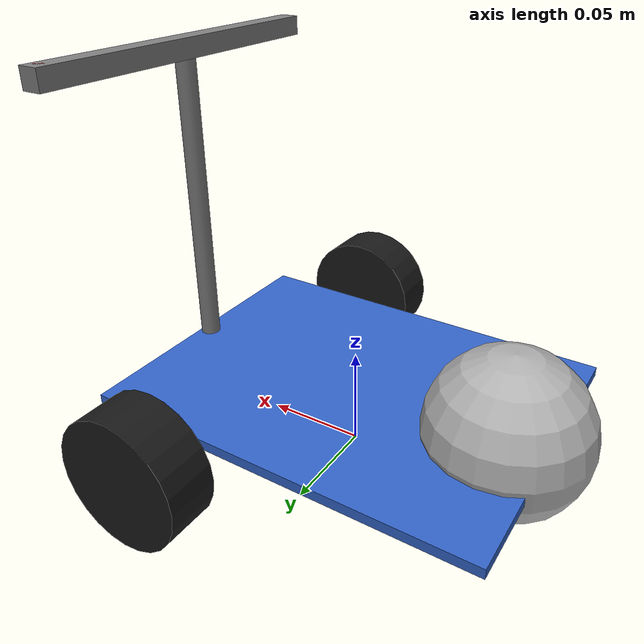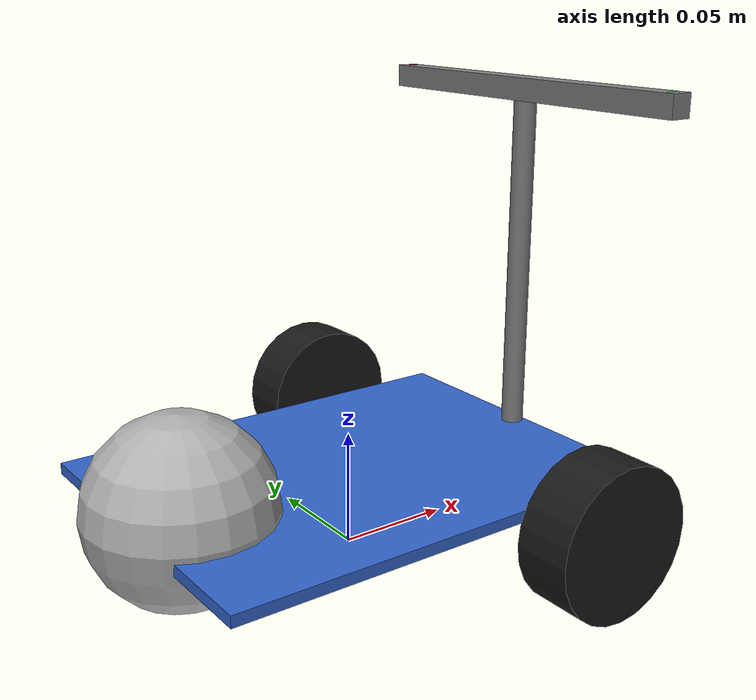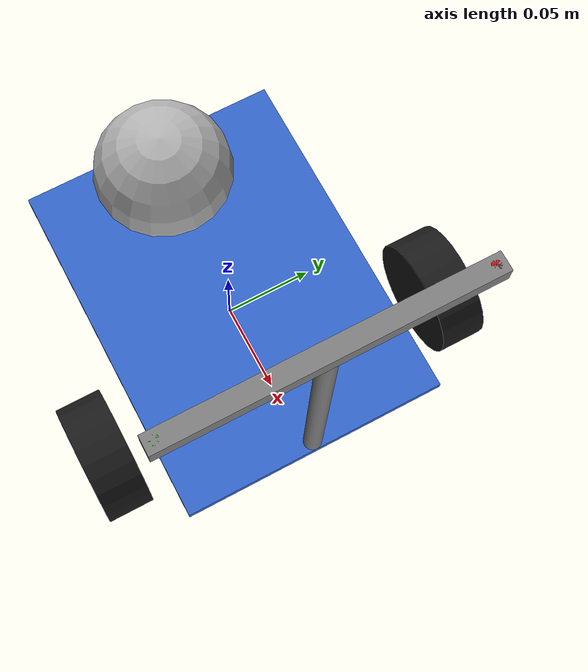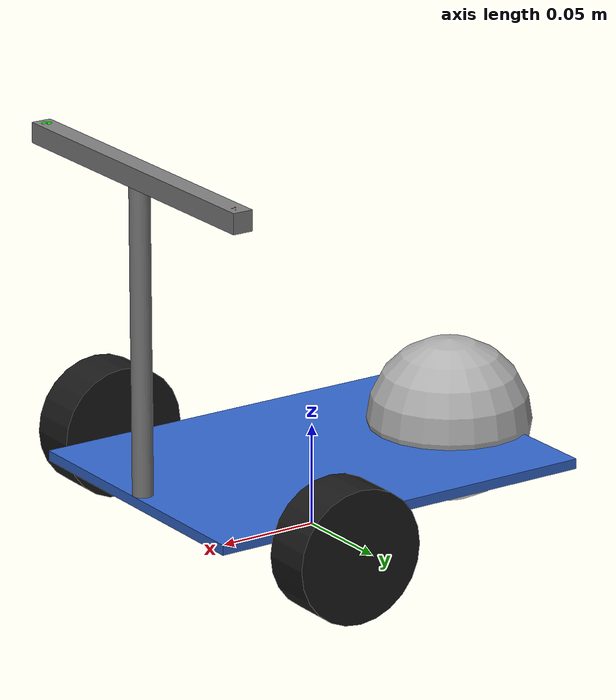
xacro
<?xml version="1.0"?>
<robot name="jetbot" xmlns:xacro="http://www.ros.org/wiki/xacro">
<xacro:property name="wheel_radius" value="0.0325"/>
<xacro:property name="wheel_thickness" value="0.025"/>
<xacro:property name="wheel_distance" value="0.175"/>
<xacro:property name="wheel_x_offset" value="0.05"/>

<xacro:property name="body_link_x_dim" value="0.20"/>
<xacro:property name="body_link_y_dim" value="0.15"/>
<xacro:property name="body_link_z_dim" value="0.005"/>
<xacro:property name="wheel_link_radius" value="0.0325"/>
<xacro:property name="wheel_link_length" value="0.025"/>
<xacro:property name="wheel_link_z_location" value="${-body_link_z_dim/2}"/>
<xacro:property name="caster_link_radius" value="0.04"/>
<xacro:property name="caster_link_z_location" value="${-body_link_z_dim/2-wheel_link_radius+caster_link_radius}"/>
<xacro:property name="camera_radius" value="0.0025"/>
<xacro:property name="camera_baseline" value="0.16"/>
<xacro:property name="camera_height_from_body" value="0.155"/>
<xacro:property name="camera_offset_from_front" value="0.005"/>
<xacro:property name="body_density" value="500.0"/>
<xacro:property name="wheel_density" value="1000.0"/>
<xacro:property name="caster_density" value="1000.0"/>
<xacro:property name="pi_constant" value="3.14159265"/>
<xacro:property name="body_mass" value="${body_density*body_link_x_dim*body_link_y_dim*body_link_z_dim}"/>
<xacro:property name="wheel_mass" value="${wheel_density*pi_constant*wheel_link_radius*wheel_link_radius*wheel_link_length}"/>
<xacro:property name="caster_mass" value="${caster_density*4.0/3.0*pi_constant*caster_link_radius*caster_link_radius*caster_link_radius}"/>
<xacro:property name="Iz_wheel" value="${0.5*wheel_mass*wheel_link_radius*wheel_link_radius}"/>
<xacro:property name="I_wheel" value="${(1.0/12.0)*wheel_mass*(3.0*wheel_link_radius*wheel_link_radius+wheel_link_length*wheel_link_length)}"/>
<xacro:property name="I_caster" value="${(2.0/5.0)*caster_mass*caster_link_radius*caster_link_radius}"/>

<xacro:macro name="inertia_wheel">
    <inertial>
        <origin rpy="0 0 0" xyz="0 0 0"/>
        <mass value="${wheel_mass}"/>
        <inertia ixx="${I_wheel}" ixy="0.0" ixz="0.0"
                 iyy="${I_wheel}" iyz="0" izz="${Iz_wheel}"/>
    </inertial>
</xacro:macro>

<xacro:macro name="inertia_caster">
    <inertial>
        <origin rpy="0 0 0" xyz="0 0 0"/>
        <mass value="${caster_mass}"/>
        <inertia ixx="${I_caster}" ixy="0.0" ixz="0.0"
                 iyy="${I_caster}" iyz="0" izz="${I_caster}"/>
    </inertial>
</xacro:macro>

<material name="blue">
    <color rgba="0.2 0.4 0.8 1"/>
</material>
<material name="black">
    <color rgba="0.1 0.1 0.1 1"/>
</material>
<material name="red">
    <color rgba="1 0 0 0.8"/>
</material>
<material name="green">
    <color rgba="0 1 0 0.8"/>
</material>
<material name="gray">
    <color rgba="0.5 0.5 0.5 1"/>
</material>
<material name="silver">
    <color rgba="0.7 0.7 0.7 1"/>
</material>

<link name="base_footprint"/>

<joint name="base_footprint_joint" type="fixed">
    <parent link="base_footprint"/>
    <child link="body_link"/>
    <origin xyz="0 0 ${wheel_link_radius}" rpy="0 0 0"/>
</joint>

<link name="body_link">
    <visual>
        <geometry>
            <box size="${body_link_x_dim} ${body_link_y_dim} ${body_link_z_dim}"/>
        </geometry>
        <origin rpy="0 0 0" xyz="0 0 0"/>
        <material name="blue"/>
    </visual>

    <collision>
        <geometry>
            <box size="${body_link_x_dim} ${body_link_y_dim} ${body_link_z_dim}"/>
        </geometry>
        <origin rpy="0 0 0" xyz="0 0 0"/>
    </collision>

    <inertial>
        <origin rpy="0 0 0" xyz="0 0 0"/>
        <mass value="${body_mass}"/>
        <inertia
            ixx="${(1/12)*body_mass*(body_link_y_dim*body_link_y_dim+body_link_z_dim*body_link_z_dim)}" ixy="0"
            iyy="${(1/12)*body_mass*(body_link_x_dim*body_link_x_dim+body_link_z_dim*body_link_z_dim)}" ixz="0"
            izz="${(1/12)*body_mass*(body_link_y_dim*body_link_y_dim+body_link_x_dim*body_link_x_dim)}" iyz="0"/>
    </inertial>
</link>

<joint name="base_link_joint" type="fixed">
    <parent link="body_link"/>
    <child link="base_link"/>
    <origin xyz="0 0 0" rpy="0 0 0"/>
</joint>

<link name="base_link"/>

<link name="left_wheel">
    <visual>
        <geometry>
            <cylinder radius="${wheel_radius}" length="${wheel_thickness}"/>
        </geometry>
        <origin xyz="0 0 0" rpy="1.5708 0 0"/>
        <material name="black"/>
    </visual>
    <collision>
        <geometry>
            <cylinder radius="${wheel_radius}" length="${wheel_thickness}"/>
        </geometry>
        <origin xyz="0 0 0" rpy="1.5708 0 0"/>
    </collision>
    <xacro:inertia_wheel/>
</link>

<link name="right_wheel">
    <visual>
        <geometry>
            <cylinder radius="${wheel_radius}" length="${wheel_thickness}"/>
        </geometry>
        <origin xyz="0 0 0" rpy="1.5708 0 0"/>
        <material name="black"/>
    </visual>
    <collision>
        <geometry>
            <cylinder radius="${wheel_radius}" length="${wheel_thickness}"/>
        </geometry>
        <origin xyz="0 0 0" rpy="1.5708 0 0"/>
    </collision>
    <xacro:inertia_wheel/>
</link>

<joint name="left_wheel_joint" type="continuous">
    <parent link="body_link"/>
    <child link="left_wheel"/>
    <origin xyz="${wheel_x_offset} ${wheel_distance/2 + wheel_thickness/2} ${wheel_link_z_location}" rpy="0 0 0"/>
    <axis xyz="0 1 0"/>
</joint>

<joint name="right_wheel_joint" type="continuous">
    <parent link="body_link"/>
    <child link="right_wheel"/>
    <origin xyz="${wheel_x_offset} ${-wheel_distance/2 - wheel_thickness/2} ${wheel_link_z_location}" rpy="0 0 0"/>
    <axis xyz="0 1 0"/>
</joint>

<joint name="caster_joint" type="fixed">
    <parent link="body_link"/>
    <child link="caster_link"/>
    <origin xyz="${-body_link_x_dim/2 + 0.02} 0 ${caster_link_z_location}" rpy="0 0 0"/>
</joint>

<link name="caster_link">
    <visual>
        <origin rpy="0 0 0" xyz="0 0 0"/>
        <geometry>
            <sphere radius="${caster_link_radius}"/>
        </geometry>
        <material name="silver"/>
    </visual>

    <collision>
        <origin rpy="0 0 0" xyz="0 0 0"/>
        <geometry>
            <sphere radius="${caster_link_radius}"/>
        </geometry>
    </collision>

    <xacro:inertia_caster/>
</link>

<joint name="camera_pole_joint" type="fixed">
    <parent link="body_link"/>
    <child link="camera_pole_link"/>
    <origin xyz="${body_link_x_dim/2 - camera_offset_from_front} 0 ${body_link_z_dim/2}" rpy="0 0 0"/>
</joint>

<link name="camera_pole_link">
    <visual>
        <origin xyz="0 0 ${camera_height_from_body/2}" rpy="0 0 0"/>
        <geometry>
            <cylinder radius="0.005" length="${camera_height_from_body}"/>
        </geometry>
        <material name="gray"/>
    </visual>
</link>

<joint name="camera_mount_joint" type="fixed">
    <parent link="camera_pole_link"/>
    <child link="camera_mount_link"/>
    <origin xyz="0 0 ${camera_height_from_body}" rpy="0 0 0"/>
</joint>

<link name="camera_mount_link">
    <visual>
        <geometry>
            <box size="0.01 ${camera_baseline + 0.01} 0.01"/>
        </geometry>
        <material name="gray"/>
    </visual>
</link>

<joint name="camera_left_joint" type="fixed">
    <parent link="camera_mount_link"/>
    <child link="camera_left_link"/>
    <origin xyz="0 ${camera_baseline/2} 0" rpy="0 0 0"/>
</joint>

<link name="camera_left_link">
    <visual>
        <geometry>
            <cylinder radius="${camera_radius}" length="0.01"/>
        </geometry>
        <origin xyz="0 0 0" rpy="0 0 0"/>
        <material name="red"/>
    </visual>
</link>

<joint name="camera_left_optical_joint" type="fixed">
    <parent link="camera_left_link"/>
    <child link="camera_left_optical_frame"/>
    <origin xyz="0 0 0" rpy="-1.5708 0 -1.5708"/>
</joint>

<link name="camera_left_optical_frame"/>

<joint name="camera_right_joint" type="fixed">
    <parent link="camera_mount_link"/>
    <child link="camera_right_link"/>
    <origin xyz="0 ${-camera_baseline/2} 0" rpy="0 0 0"/>
</joint>

<link name="camera_right_link">
    <visual>
        <geometry>
            <cylinder radius="${camera_radius}" length="0.01"/>
        </geometry>
        <origin xyz="0 0 0" rpy="0 0 0"/>
        <material name="green"/>
    </visual>
</link>

<joint name="camera_right_optical_joint" type="fixed">
    <parent link="camera_right_link"/>
    <child link="camera_right_optical_frame"/>
    <origin xyz="0 0 0" rpy="-1.5708 0 -1.5708"/>
</joint>

<link name="camera_right_optical_frame"/>

</robot>
